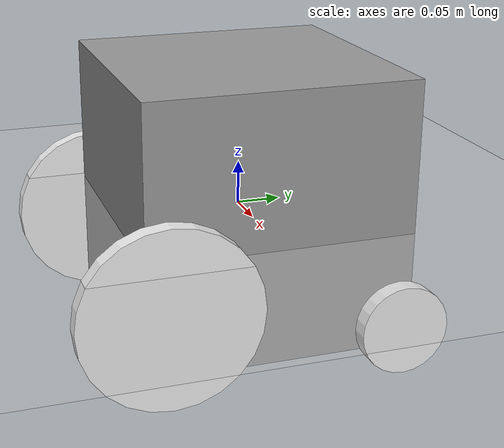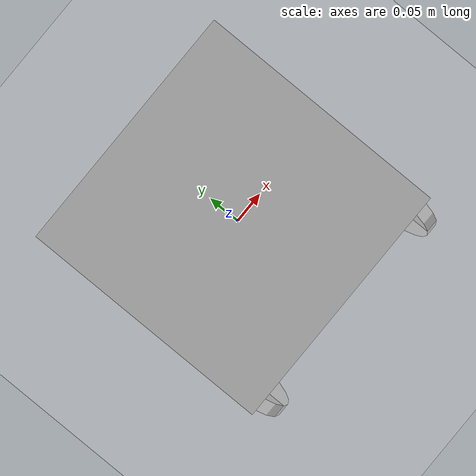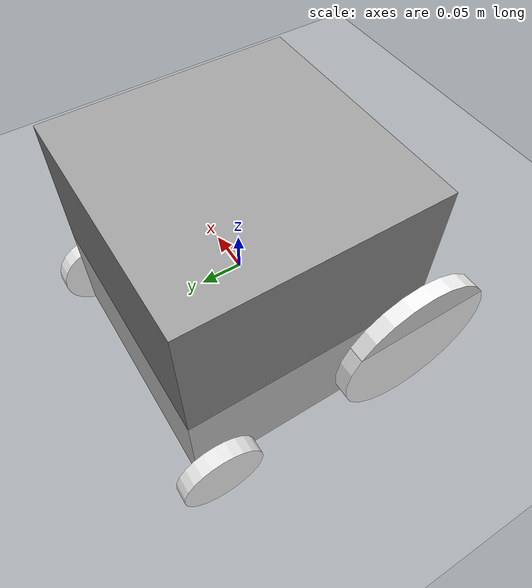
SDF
<?xml version="1.0" ?>
<sdf version="1.5">
  <world name="default">
    <include>
      <uri>model://ground_plane</uri>
    </include>
    <include>
      <uri>model://sun</uri>
    </include>
    <include>
      <uri>model://pvc_powerchair</uri>
    </include>
  </world>
</sdf>

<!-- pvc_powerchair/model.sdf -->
<sdf version="1.5">
  <model name="pvc_powerchair">

    <!-- body -->
    <link name="body">
      <inertial>
        <mass>100</mass>
      </inertial>
      <visual name="vis_body">
        <pose>0 0 0.02 0 0 0</pose>
        <geometry>
          <box>
						<size>0.3 0.3 0.3</size>
          </box>
        </geometry>
        <material>
          <script>
            <uri>file://media/materials/scripts/gazebo.material</uri>
            <name>Gazebo/Grey</name>
          </script>
        </material>
      </visual>
      <collision name="col_body">
        <pose>0 0 0 0 0 0</pose>
        <geometry>
          <box>
            <size>0.3 0.3 0.3</size>
          </box>
        </geometry>
      </collision>
    </link>

    <!-- left big wheel -->
    <link name="left_big_wheel">
      <pose>0.17 -0.13 -0.05 0 1.56 0</pose>
      <self_collide>0</self_collide>
      <inertial>
        <pose>0 0 0.5 0 0 0</pose>
      </inertial>

      <visual name="vis_left_big_wheel">
        <pose>0 0 0 0 0 0</pose>
        <geometry>
          <cylinder>
            <radius>0.1</radius>
            <length>0.02</length>
          </cylinder>
        </geometry>
        <material>
          <script>
            <uri>file://media/materials/scripts/gazebo.material</uri>
            <name>Gazebo/White</name>
          </script>
        </material>
      </visual>

      <collision name="col_left_big_wheel">
        <pose>0 0 0 0 0 0</pose>
        <geometry>
          <cylinder>
            <radius>0.1</radius>
            <length>0.02</length>
          </cylinder>
        </geometry>
      </collision>
		</link>

    <!-- right big wheel -->
    <link name="right_big_wheel">
      <pose>-0.17 -0.13 -0.05 0 1.56 0</pose>
      <self_collide>0</self_collide>
      <inertial>
        <pose>0 0 0.5 0 0 0</pose>
      </inertial>

      <visual name="vis_right_big_wheel">
        <pose>0 0 0 0 0 0</pose>
        <geometry>
          <cylinder>
            <radius>0.1</radius>
            <length>0.02</length>
          </cylinder>
        </geometry>
        <material>
          <script>
            <uri>file://media/materials/scripts/gazebo.material</uri>
            <name>Gazebo/White</name>
          </script>
        </material>
      </visual>

      <collision name="col_right_big_wheel">
        <pose>0 0 0 0 0 0</pose>
        <geometry>
          <cylinder>
            <radius>0.1</radius>
            <length>0.02</length>
          </cylinder>
        </geometry>
      </collision>
		</link>

    <!-- left small wheel -->
    <link name="left_small_wheel">
      <pose>0.17 0.13 -0.1 0 1.56 0</pose>
      <self_collide>0</self_collide>
      <inertial>
        <pose>0 0 0.5 0 0 0</pose>
      </inertial>

      <visual name="vis_left_small_wheel">
        <pose>0 0 0 0 0 0</pose>
        <geometry>
          <cylinder>
            <radius>0.05</radius>
            <length>0.02</length>
          </cylinder>
        </geometry>
        <material>
          <script>
            <uri>file://media/materials/scripts/gazebo.material</uri>
            <name>Gazebo/White</name>
          </script>
        </material>
      </visual>

      <collision name="col_left_small_wheel">
        <pose>0 0 0 0 0 0</pose>
        <geometry>
          <cylinder>
            <radius>0.05</radius>
            <length>0.02</length>
          </cylinder>
        </geometry>
      </collision>
		</link>

    <!-- right small wheel -->
    <link name="right_small_wheel">
      <pose>-0.17 0.13 -0.1 0 1.56 0</pose>
      <self_collide>0</self_collide>
      <inertial>
        <pose>0 0 0.5 0 0 0</pose>
      </inertial>

      <visual name="vis_right_small_wheel">
        <pose>0 0 0 0 0 0</pose>
        <geometry>
          <cylinder>
            <radius>0.05</radius>
            <length>0.02</length>
          </cylinder>
        </geometry>
        <material>
          <script>
            <uri>file://media/materials/scripts/gazebo.material</uri>
            <name>Gazebo/White</name>
          </script>
        </material>
      </visual>

      <collision name="col_right_small_wheel">
        <pose>0 0 0 0 0 0</pose>
        <geometry>
          <cylinder>
            <radius>0.05</radius>
            <length>0.02</length>
          </cylinder>
        </geometry>
      </collision>
		</link>

    <!-- pin joint for body and wheels -->
    <joint name="joint_left_big_wheel" type="revolute">
      <parent>body</parent>
      <child>left_big_wheel</child>
      <axis>
        <xyz>1 0 0</xyz>
        <use_parent_model_frame>true</use_parent_model_frame>
      </axis>
    </joint>

    <joint name="joint_right_big_wheel" type="revolute">
      <parent>body</parent>
      <child>right_big_wheel</child>
      <axis>
        <xyz>1 0 0</xyz>
        <use_parent_model_frame>true</use_parent_model_frame>
      </axis>
    </joint>

    <joint name="joint_left_small_wheel" type="revolute">
      <parent>body</parent>
      <child>left_small_wheel</child>
      <axis>
        <xyz>1 0 0</xyz>
        <use_parent_model_frame>true</use_parent_model_frame>
      </axis>
    </joint>

    <joint name="joint_right_small_wheel" type="revolute">
      <parent>body</parent>
      <child>right_small_wheel</child>
      <axis>
        <xyz>1 0 0</xyz>
        <use_parent_model_frame>true</use_parent_model_frame>
      </axis>
    </joint>

  </model>
</sdf>
